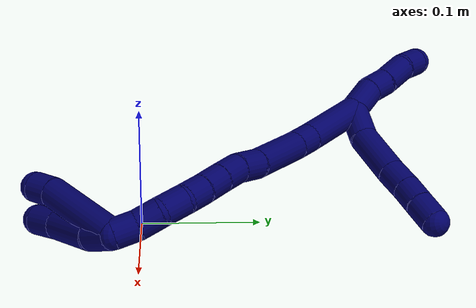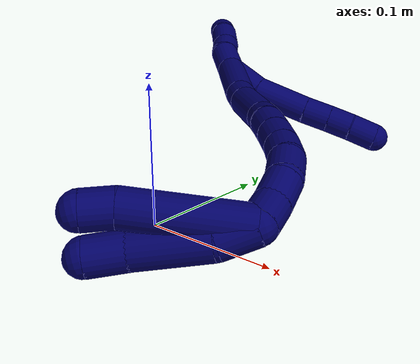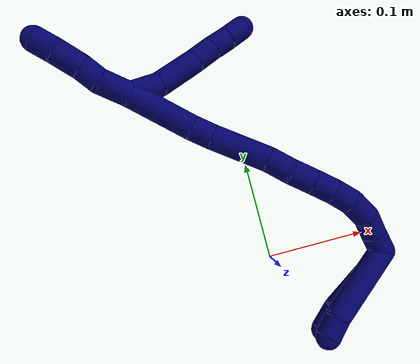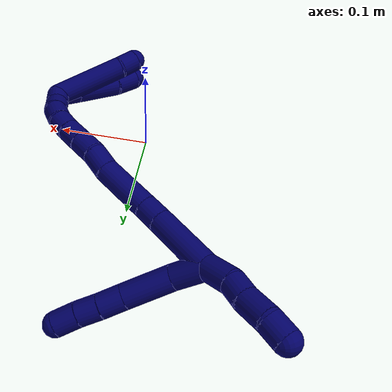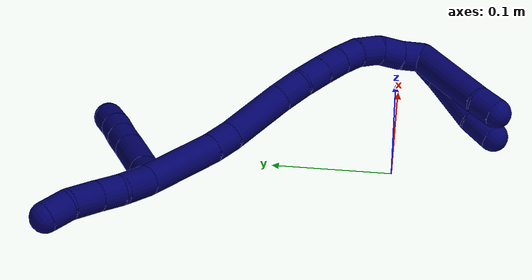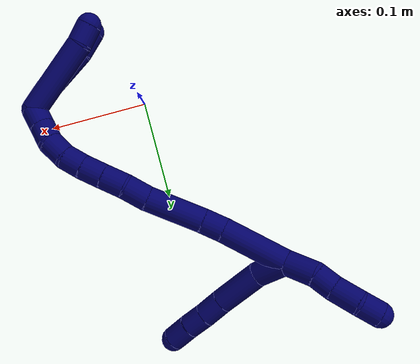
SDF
<sdf version="1.7">
 <world name="default">
  <model name="7">
   <static>0</static>
   <link name="7">
    <collision name="collision-cylinder-e_1_2_8">
     <pose>0.013677 0.000222 0.009453 -0.023457 0.965903 -0.0123</pose>
     <geometry><cylinder><radius>0.0125</radius><length>0.033254</length></cylinder></geometry>
     <surface>
      <friction><ode><mu>1.16</mu><mu2>1.16</mu2><slip1>0</slip1><slip2>0</slip2></ode></friction>
      <contact><ode><kp>1e+06</kp><kd>1</kd><max_vel>0</max_vel><min_depth>0.001</min_depth></ode></contact>
     </surface>
    </collision>
    <visual name="visual-cylinder-e_1_2_8">
     <pose>0.013677 0.000222 0.009453 -0.023457 0.965903 -0.0123</pose>
     <geometry><cylinder><radius>0.0125</radius><length>0.033254</length></cylinder></geometry>
     <material><ambient>0.003922 0 0.403922 1</ambient></material>
    </visual>
    <collision name="collision-cylinder-e_2_8_9">
     <pose>0.04292 0.001849 0.03717 -0.07678 0.704368 -0.028229</pose>
     <geometry><cylinder><radius>0.0125</radius><length>0.048079</length></cylinder></geometry>
     <surface>
      <friction><ode><mu>1.16</mu><mu2>1.16</mu2><slip1>0</slip1><slip2>0</slip2></ode></friction>
      <contact><ode><kp>1e+06</kp><kd>1</kd><max_vel>0</max_vel><min_depth>0.001</min_depth></ode></contact>
     </surface>
    </collision>
    <visual name="visual-cylinder-e_2_8_9">
     <pose>0.04292 0.001849 0.03717 -0.07678 0.704368 -0.028229</pose>
     <geometry><cylinder><radius>0.0125</radius><length>0.048079</length></cylinder></geometry>
     <material><ambient>0.003922 0 0.403922 1</ambient></material>
    </visual>
    <collision name="collision-cylinder-e_3_9_10">
     <pose>0.065653 0.004009 0.064823 -0.080313 0.650392 -0.027092</pose>
     <geometry><cylinder><radius>0.0125</radius><length>0.023671</length></cylinder></geometry>
     <surface>
      <friction><ode><mu>1.16</mu><mu2>1.16</mu2><slip1>0</slip1><slip2>0</slip2></ode></friction>
      <contact><ode><kp>1e+06</kp><kd>1</kd><max_vel>0</max_vel><min_depth>0.001</min_depth></ode></contact>
     </surface>
    </collision>
    <visual name="visual-cylinder-e_3_9_10">
     <pose>0.065653 0.004009 0.064823 -0.080313 0.650392 -0.027092</pose>
     <geometry><cylinder><radius>0.0125</radius><length>0.023671</length></cylinder></geometry>
     <material><ambient>0.003922 0 0.403922 1</ambient></material>
    </visual>
    <collision name="collision-cylinder-e_4_10_11">
     <pose>0.079676 0.005027 0.082528 -0.031482 0.689262 -0.011301</pose>
     <geometry><cylinder><radius>0.0125</radius><length>0.021563</length></cylinder></geometry>
     <surface>
      <friction><ode><mu>1.16</mu><mu2>1.16</mu2><slip1>0</slip1><slip2>0</slip2></ode></friction>
      <contact><ode><kp>1e+06</kp><kd>1</kd><max_vel>0</max_vel><min_depth>0.001</min_depth></ode></contact>
     </surface>
    </collision>
    <visual name="visual-cylinder-e_4_10_11">
     <pose>0.079676 0.005027 0.082528 -0.031482 0.689262 -0.011301</pose>
     <geometry><cylinder><radius>0.0125</radius><length>0.021563</length></cylinder></geometry>
     <material><ambient>0.003922 0 0.403922 1</ambient></material>
    </visual>
    <collision name="collision-cylinder-e_5_11_6">
     <pose>0.094062 0.006449 0.099747 -0.129542 0.69785 -0.047186</pose>
     <geometry><cylinder><radius>0.0125</radius><length>0.023433</length></cylinder></geometry>
     <surface>
      <friction><ode><mu>1.16</mu><mu2>1.16</mu2><slip1>0</slip1><slip2>0</slip2></ode></friction>
      <contact><ode><kp>1e+06</kp><kd>1</kd><max_vel>0</max_vel><min_depth>0.001</min_depth></ode></contact>
     </surface>
    </collision>
    <visual name="visual-cylinder-e_5_11_6">
     <pose>0.094062 0.006449 0.099747 -0.129542 0.69785 -0.047186</pose>
     <geometry><cylinder><radius>0.0125</radius><length>0.023433</length></cylinder></geometry>
     <material><ambient>0.003922 0 0.403922 1</ambient></material>
    </visual>
    <collision name="collision-cylinder-e_1_2_12">
     <pose>-0.012835 0.008346 -0.000807 -1.6672 -0.992104 1.07502</pose>
     <geometry><cylinder><radius>0.0125</radius><length>0.030662</length></cylinder></geometry>
     <surface>
      <friction><ode><mu>1.16</mu><mu2>1.16</mu2><slip1>0</slip1><slip2>0</slip2></ode></friction>
      <contact><ode><kp>1e+06</kp><kd>1</kd><max_vel>0</max_vel><min_depth>0.001</min_depth></ode></contact>
     </surface>
    </collision>
    <visual name="visual-cylinder-e_1_2_12">
     <pose>-0.012835 0.008346 -0.000807 -1.6672 -0.992104 1.07502</pose>
     <geometry><cylinder><radius>0.0125</radius><length>0.030662</length></cylinder></geometry>
     <material><ambient>0.003922 0 0.403922 1</ambient></material>
    </visual>
    <collision name="collision-cylinder-e_2_12_13">
     <pose>-0.032716 0.024071 3.3e-05 -1.35115 -0.750181 0.611275</pose>
     <geometry><cylinder><radius>0.0125</radius><length>0.02067</length></cylinder></geometry>
     <surface>
      <friction><ode><mu>1.16</mu><mu2>1.16</mu2><slip1>0</slip1><slip2>0</slip2></ode></friction>
      <contact><ode><kp>1e+06</kp><kd>1</kd><max_vel>0</max_vel><min_depth>0.001</min_depth></ode></contact>
     </surface>
    </collision>
    <visual name="visual-cylinder-e_2_12_13">
     <pose>-0.032716 0.024071 3.3e-05 -1.35115 -0.750181 0.611275</pose>
     <geometry><cylinder><radius>0.0125</radius><length>0.02067</length></cylinder></geometry>
     <material><ambient>0.003922 0 0.403922 1</ambient></material>
    </visual>
    <collision name="collision-cylinder-e_3_13_14">
     <pose>-0.05036 0.040208 0.002539 -1.47305 -0.877829 0.804883</pose>
     <geometry><cylinder><radius>0.0125</radius><length>0.027551</length></cylinder></geometry>
     <surface>
      <friction><ode><mu>1.16</mu><mu2>1.16</mu2><slip1>0</slip1><slip2>0</slip2></ode></friction>
      <contact><ode><kp>1e+06</kp><kd>1</kd><max_vel>0</max_vel><min_depth>0.001</min_depth></ode></contact>
     </surface>
    </collision>
    <visual name="visual-cylinder-e_3_13_14">
     <pose>-0.05036 0.040208 0.002539 -1.47305 -0.877829 0.804883</pose>
     <geometry><cylinder><radius>0.0125</radius><length>0.027551</length></cylinder></geometry>
     <material><ambient>0.003922 0 0.403922 1</ambient></material>
    </visual>
    <collision name="collision-cylinder-e_4_14_5">
     <pose>-0.067077 0.057569 0.003185 -1.59552 -0.618086 0.63256</pose>
     <geometry><cylinder><radius>0.0125</radius><length>0.021117</length></cylinder></geometry>
     <surface>
      <friction><ode><mu>1.16</mu><mu2>1.16</mu2><slip1>0</slip1><slip2>0</slip2></ode></friction>
      <contact><ode><kp>1e+06</kp><kd>1</kd><max_vel>0</max_vel><min_depth>0.001</min_depth></ode></contact>
     </surface>
    </collision>
    <visual name="visual-cylinder-e_4_14_5">
     <pose>-0.067077 0.057569 0.003185 -1.59552 -0.618086 0.63256</pose>
     <geometry><cylinder><radius>0.0125</radius><length>0.021117</length></cylinder></geometry>
     <material><ambient>0.003922 0 0.403922 1</ambient></material>
    </visual>
    <collision name="collision-cylinder-e_1_2_15">
     <pose>0.022178 -0.02501 0.000885 1.53544 0.72515 0.702006</pose>
     <geometry><cylinder><radius>0.0125</radius><length>0.066877</length></cylinder></geometry>
     <surface>
      <friction><ode><mu>1.16</mu><mu2>1.16</mu2><slip1>0</slip1><slip2>0</slip2></ode></friction>
      <contact><ode><kp>1e+06</kp><kd>1</kd><max_vel>0</max_vel><min_depth>0.001</min_depth></ode></contact>
     </surface>
    </collision>
    <visual name="visual-cylinder-e_1_2_15">
     <pose>0.022178 -0.02501 0.000885 1.53544 0.72515 0.702006</pose>
     <geometry><cylinder><radius>0.0125</radius><length>0.066877</length></cylinder></geometry>
     <material><ambient>0.003922 0 0.403922 1</ambient></material>
    </visual>
    <collision name="collision-cylinder-e_2_15_16">
     <pose>0.051163 -0.058696 0.002872 1.44439 0.661387 0.587377</pose>
     <geometry><cylinder><radius>0.0125</radius><length>0.022166</length></cylinder></geometry>
     <surface>
      <friction><ode><mu>1.16</mu><mu2>1.16</mu2><slip1>0</slip1><slip2>0</slip2></ode></friction>
      <contact><ode><kp>1e+06</kp><kd>1</kd><max_vel>0</max_vel><min_depth>0.001</min_depth></ode></contact>
     </surface>
    </collision>
    <visual name="visual-cylinder-e_2_15_16">
     <pose>0.051163 -0.058696 0.002872 1.44439 0.661387 0.587377</pose>
     <geometry><cylinder><radius>0.0125</radius><length>0.022166</length></cylinder></geometry>
     <material><ambient>0.003922 0 0.403922 1</ambient></material>
    </visual>
    <collision name="collision-cylinder-e_3_16_17">
     <pose>0.074269 -0.090916 0.008511 1.38042 0.596999 0.49759</pose>
     <geometry><cylinder><radius>0.0125</radius><length>0.057983</length></cylinder></geometry>
     <surface>
      <friction><ode><mu>1.16</mu><mu2>1.16</mu2><slip1>0</slip1><slip2>0</slip2></ode></friction>
      <contact><ode><kp>1e+06</kp><kd>1</kd><max_vel>0</max_vel><min_depth>0.001</min_depth></ode></contact>
     </surface>
    </collision>
    <visual name="visual-cylinder-e_3_16_17">
     <pose>0.074269 -0.090916 0.008511 1.38042 0.596999 0.49759</pose>
     <geometry><cylinder><radius>0.0125</radius><length>0.057983</length></cylinder></geometry>
     <material><ambient>0.003922 0 0.403922 1</ambient></material>
    </visual>
    <collision name="collision-cylinder-e_4_17_18">
     <pose>0.096146 -0.125198 0.013761 1.50458 0.478261 0.448649</pose>
     <geometry><cylinder><radius>0.0125</radius><length>0.024245</length></cylinder></geometry>
     <surface>
      <friction><ode><mu>1.16</mu><mu2>1.16</mu2><slip1>0</slip1><slip2>0</slip2></ode></friction>
      <contact><ode><kp>1e+06</kp><kd>1</kd><max_vel>0</max_vel><min_depth>0.001</min_depth></ode></contact>
     </surface>
    </collision>
    <visual name="visual-cylinder-e_4_17_18">
     <pose>0.096146 -0.125198 0.013761 1.50458 0.478261 0.448649</pose>
     <geometry><cylinder><radius>0.0125</radius><length>0.024245</length></cylinder></geometry>
     <material><ambient>0.003922 0 0.403922 1</ambient></material>
    </visual>
    <collision name="collision-cylinder-e_5_18_19">
     <pose>0.109123 -0.144834 0.015513 1.45439 0.690288 0.619302</pose>
     <geometry><cylinder><radius>0.0125</radius><length>0.023235</length></cylinder></geometry>
     <surface>
      <friction><ode><mu>1.16</mu><mu2>1.16</mu2><slip1>0</slip1><slip2>0</slip2></ode></friction>
      <contact><ode><kp>1e+06</kp><kd>1</kd><max_vel>0</max_vel><min_depth>0.001</min_depth></ode></contact>
     </surface>
    </collision>
    <visual name="visual-cylinder-e_5_18_19">
     <pose>0.109123 -0.144834 0.015513 1.45439 0.690288 0.619302</pose>
     <geometry><cylinder><radius>0.0125</radius><length>0.023235</length></cylinder></geometry>
     <material><ambient>0.003922 0 0.403922 1</ambient></material>
    </visual>
    <collision name="collision-cylinder-e_6_19_20">
     <pose>0.123746 -0.162023 0.017325 1.47798 0.714695 0.6559</pose>
     <geometry><cylinder><radius>0.0125</radius><length>0.022051</length></cylinder></geometry>
     <surface>
      <friction><ode><mu>1.16</mu><mu2>1.16</mu2><slip1>0</slip1><slip2>0</slip2></ode></friction>
      <contact><ode><kp>1e+06</kp><kd>1</kd><max_vel>0</max_vel><min_depth>0.001</min_depth></ode></contact>
     </surface>
    </collision>
    <visual name="visual-cylinder-e_6_19_20">
     <pose>0.123746 -0.162023 0.017325 1.47798 0.714695 0.6559</pose>
     <geometry><cylinder><radius>0.0125</radius><length>0.022051</length></cylinder></geometry>
     <material><ambient>0.003922 0 0.403922 1</ambient></material>
    </visual>
    <collision name="collision-cylinder-e_7_20_21">
     <pose>0.137584 -0.178045 0.018005 1.58269 0.707573 0.715341</pose>
     <geometry><cylinder><radius>0.0125</radius><length>0.020346</length></cylinder></geometry>
     <surface>
      <friction><ode><mu>1.16</mu><mu2>1.16</mu2><slip1>0</slip1><slip2>0</slip2></ode></friction>
      <contact><ode><kp>1e+06</kp><kd>1</kd><max_vel>0</max_vel><min_depth>0.001</min_depth></ode></contact>
     </surface>
    </collision>
    <visual name="visual-cylinder-e_7_20_21">
     <pose>0.137584 -0.178045 0.018005 1.58269 0.707573 0.715341</pose>
     <geometry><cylinder><radius>0.0125</radius><length>0.020346</length></cylinder></geometry>
     <material><ambient>0.003922 0 0.403922 1</ambient></material>
    </visual>
    <collision name="collision-cylinder-e_8_21_22">
     <pose>0.151652 -0.193325 0.01503 1.93563 0.745091 1.03249</pose>
     <geometry><cylinder><radius>0.0125</radius><length>0.02199</length></cylinder></geometry>
     <surface>
      <friction><ode><mu>1.16</mu><mu2>1.16</mu2><slip1>0</slip1><slip2>0</slip2></ode></friction>
      <contact><ode><kp>1e+06</kp><kd>1</kd><max_vel>0</max_vel><min_depth>0.001</min_depth></ode></contact>
     </surface>
    </collision>
    <visual name="visual-cylinder-e_8_21_22">
     <pose>0.151652 -0.193325 0.01503 1.93563 0.745091 1.03249</pose>
     <geometry><cylinder><radius>0.0125</radius><length>0.02199</length></cylinder></geometry>
     <material><ambient>0.003922 0 0.403922 1</ambient></material>
    </visual>
    <collision name="collision-cylinder-e_9_22_23">
     <pose>0.166155 -0.206091 0.00649 2.39664 0.741536 1.56574</pose>
     <geometry><cylinder><radius>0.0125</radius><length>0.02087</length></cylinder></geometry>
     <surface>
      <friction><ode><mu>1.16</mu><mu2>1.16</mu2><slip1>0</slip1><slip2>0</slip2></ode></friction>
      <contact><ode><kp>1e+06</kp><kd>1</kd><max_vel>0</max_vel><min_depth>0.001</min_depth></ode></contact>
     </surface>
    </collision>
    <visual name="visual-cylinder-e_9_22_23">
     <pose>0.166155 -0.206091 0.00649 2.39664 0.741536 1.56574</pose>
     <geometry><cylinder><radius>0.0125</radius><length>0.02087</length></cylinder></geometry>
     <material><ambient>0.003922 0 0.403922 1</ambient></material>
    </visual>
    <collision name="collision-cylinder-e_10_23_1">
     <pose>0.178885 -0.217692 -0.004584 2.27434 0.59625 1.17183</pose>
     <geometry><cylinder><radius>0.0125</radius><length>0.020238</length></cylinder></geometry>
     <surface>
      <friction><ode><mu>1.16</mu><mu2>1.16</mu2><slip1>0</slip1><slip2>0</slip2></ode></friction>
      <contact><ode><kp>1e+06</kp><kd>1</kd><max_vel>0</max_vel><min_depth>0.001</min_depth></ode></contact>
     </surface>
    </collision>
    <visual name="visual-cylinder-e_10_23_1">
     <pose>0.178885 -0.217692 -0.004584 2.27434 0.59625 1.17183</pose>
     <geometry><cylinder><radius>0.0125</radius><length>0.020238</length></cylinder></geometry>
     <material><ambient>0.003922 0 0.403922 1</ambient></material>
    </visual>
    <collision name="collision-cylinder-e_1_1_24">
     <pose>0.169217 -0.229481 -0.046377 2.99411 -0.3954 -2.43497</pose>
     <geometry><cylinder><radius>0.0125</radius><length>0.079701</length></cylinder></geometry>
     <surface>
      <friction><ode><mu>1.16</mu><mu2>1.16</mu2><slip1>0</slip1><slip2>0</slip2></ode></friction>
      <contact><ode><kp>1e+06</kp><kd>1</kd><max_vel>0</max_vel><min_depth>0.001</min_depth></ode></contact>
     </surface>
    </collision>
    <visual name="visual-cylinder-e_1_1_24">
     <pose>0.169217 -0.229481 -0.046377 2.99411 -0.3954 -2.43497</pose>
     <geometry><cylinder><radius>0.0125</radius><length>0.079701</length></cylinder></geometry>
     <material><ambient>0.003922 0 0.403922 1</ambient></material>
    </visual>
    <collision name="collision-cylinder-e_2_24_4">
     <pose>0.152145 -0.236963 -0.092538 2.93233 -0.170541 -1.36639</pose>
     <geometry><cylinder><radius>0.0125</radius><length>0.020299</length></cylinder></geometry>
     <surface>
      <friction><ode><mu>1.16</mu><mu2>1.16</mu2><slip1>0</slip1><slip2>0</slip2></ode></friction>
      <contact><ode><kp>1e+06</kp><kd>1</kd><max_vel>0</max_vel><min_depth>0.001</min_depth></ode></contact>
     </surface>
    </collision>
    <visual name="visual-cylinder-e_2_24_4">
     <pose>0.152145 -0.236963 -0.092538 2.93233 -0.170541 -1.36639</pose>
     <geometry><cylinder><radius>0.0125</radius><length>0.020299</length></cylinder></geometry>
     <material><ambient>0.003922 0 0.403922 1</ambient></material>
    </visual>
    <collision name="collision-cylinder-e_1_1_25">
     <pose>0.185246 -0.224042 -0.022638 -3.13886 0.053698 -3.03992</pose>
     <geometry><cylinder><radius>0.0125</radius><length>0.025313</length></cylinder></geometry>
     <surface>
      <friction><ode><mu>1.16</mu><mu2>1.16</mu2><slip1>0</slip1><slip2>0</slip2></ode></friction>
      <contact><ode><kp>1e+06</kp><kd>1</kd><max_vel>0</max_vel><min_depth>0.001</min_depth></ode></contact>
     </surface>
    </collision>
    <visual name="visual-cylinder-e_1_1_25">
     <pose>0.185246 -0.224042 -0.022638 -3.13886 0.053698 -3.03992</pose>
     <geometry><cylinder><radius>0.0125</radius><length>0.025313</length></cylinder></geometry>
     <material><ambient>0.003922 0 0.403922 1</ambient></material>
    </visual>
    <collision name="collision-cylinder-e_2_25_26">
     <pose>0.181229 -0.222702 -0.059583 -3.08791 -0.190592 2.59396</pose>
     <geometry><cylinder><radius>0.0125</radius><length>0.049581</length></cylinder></geometry>
     <surface>
      <friction><ode><mu>1.16</mu><mu2>1.16</mu2><slip1>0</slip1><slip2>0</slip2></ode></friction>
      <contact><ode><kp>1e+06</kp><kd>1</kd><max_vel>0</max_vel><min_depth>0.001</min_depth></ode></contact>
     </surface>
    </collision>
    <visual name="visual-cylinder-e_2_25_26">
     <pose>0.181229 -0.222702 -0.059583 -3.08791 -0.190592 2.59396</pose>
     <geometry><cylinder><radius>0.0125</radius><length>0.049581</length></cylinder></geometry>
     <material><ambient>0.003922 0 0.403922 1</ambient></material>
    </visual>
    <collision name="collision-cylinder-e_3_26_3">
     <pose>0.174947 -0.222728 -0.096271 3.03441 -0.126691 -1.73759</pose>
     <geometry><cylinder><radius>0.0125</radius><length>0.025106</length></cylinder></geometry>
     <surface>
      <friction><ode><mu>1.16</mu><mu2>1.16</mu2><slip1>0</slip1><slip2>0</slip2></ode></friction>
      <contact><ode><kp>1e+06</kp><kd>1</kd><max_vel>0</max_vel><min_depth>0.001</min_depth></ode></contact>
     </surface>
    </collision>
    <visual name="visual-cylinder-e_3_26_3">
     <pose>0.174947 -0.222728 -0.096271 3.03441 -0.126691 -1.73759</pose>
     <geometry><cylinder><radius>0.0125</radius><length>0.025106</length></cylinder></geometry>
     <material><ambient>0.003922 0 0.403922 1</ambient></material>
    </visual>
    <collision name="collision-sphere-3">
     <pose>0.17336 -0.22406 -0.108652 0 -0 0</pose>
     <geometry><sphere><radius>0.0125</radius></sphere></geometry>
     <surface>
      <friction><ode><mu>1.16</mu><mu2>1.16</mu2><slip1>0</slip1><slip2>0</slip2></ode></friction>
      <contact><ode><kp>1e+06</kp><kd>1</kd><max_vel>0</max_vel><min_depth>0.001</min_depth></ode></contact>
     </surface>
    </collision>
    <visual name="visual-sphere-3">
     <pose>0.17336 -0.22406 -0.108652 0 -0 0</pose>
     <geometry><sphere><radius>0.0125</radius></sphere></geometry>
     <material><ambient>0.003922 0 0.403922 1</ambient></material>
    </visual>
    <collision name="collision-sphere-26">
     <pose>0.176533 -0.221396 -0.08389 0 -0 0</pose>
     <geometry><sphere><radius>0.0125</radius></sphere></geometry>
     <surface>
      <friction><ode><mu>1.16</mu><mu2>1.16</mu2><slip1>0</slip1><slip2>0</slip2></ode></friction>
      <contact><ode><kp>1e+06</kp><kd>1</kd><max_vel>0</max_vel><min_depth>0.001</min_depth></ode></contact>
     </surface>
    </collision>
    <visual name="visual-sphere-26">
     <pose>0.176533 -0.221396 -0.08389 0 -0 0</pose>
     <geometry><sphere><radius>0.0125</radius></sphere></geometry>
     <material><ambient>0.003922 0 0.403922 1</ambient></material>
    </visual>
    <collision name="collision-sphere-25">
     <pose>0.185925 -0.224008 -0.035277 0 -0 0</pose>
     <geometry><sphere><radius>0.0125</radius></sphere></geometry>
     <surface>
      <friction><ode><mu>1.16</mu><mu2>1.16</mu2><slip1>0</slip1><slip2>0</slip2></ode></friction>
      <contact><ode><kp>1e+06</kp><kd>1</kd><max_vel>0</max_vel><min_depth>0.001</min_depth></ode></contact>
     </surface>
    </collision>
    <visual name="visual-sphere-25">
     <pose>0.185925 -0.224008 -0.035277 0 -0 0</pose>
     <geometry><sphere><radius>0.0125</radius></sphere></geometry>
     <material><ambient>0.003922 0 0.403922 1</ambient></material>
    </visual>
    <collision name="collision-sphere-4">
     <pose>0.150423 -0.239041 -0.102321 0 -0 0</pose>
     <geometry><sphere><radius>0.0125</radius></sphere></geometry>
     <surface>
      <friction><ode><mu>1.16</mu><mu2>1.16</mu2><slip1>0</slip1><slip2>0</slip2></ode></friction>
      <contact><ode><kp>1e+06</kp><kd>1</kd><max_vel>0</max_vel><min_depth>0.001</min_depth></ode></contact>
     </surface>
    </collision>
    <visual name="visual-sphere-4">
     <pose>0.150423 -0.239041 -0.102321 0 -0 0</pose>
     <geometry><sphere><radius>0.0125</radius></sphere></geometry>
     <material><ambient>0.003922 0 0.403922 1</ambient></material>
    </visual>
    <collision name="collision-sphere-24">
     <pose>0.153868 -0.234885 -0.082754 0 -0 0</pose>
     <geometry><sphere><radius>0.0125</radius></sphere></geometry>
     <surface>
      <friction><ode><mu>1.16</mu><mu2>1.16</mu2><slip1>0</slip1><slip2>0</slip2></ode></friction>
      <contact><ode><kp>1e+06</kp><kd>1</kd><max_vel>0</max_vel><min_depth>0.001</min_depth></ode></contact>
     </surface>
    </collision>
    <visual name="visual-sphere-24">
     <pose>0.153868 -0.234885 -0.082754 0 -0 0</pose>
     <geometry><sphere><radius>0.0125</radius></sphere></geometry>
     <material><ambient>0.003922 0 0.403922 1</ambient></material>
    </visual>
    <collision name="collision-sphere-1">
     <pose>0.184567 -0.224077 -0.01 0 -0 0</pose>
     <geometry><sphere><radius>0.0125</radius></sphere></geometry>
     <surface>
      <friction><ode><mu>1.16</mu><mu2>1.16</mu2><slip1>0</slip1><slip2>0</slip2></ode></friction>
      <contact><ode><kp>1e+06</kp><kd>1</kd><max_vel>0</max_vel><min_depth>0.001</min_depth></ode></contact>
     </surface>
    </collision>
    <visual name="visual-sphere-1">
     <pose>0.184567 -0.224077 -0.01 0 -0 0</pose>
     <geometry><sphere><radius>0.0125</radius></sphere></geometry>
     <material><ambient>0.003922 0 0.403922 1</ambient></material>
    </visual>
    <collision name="collision-sphere-23">
     <pose>0.173202 -0.211308 0.000833 0 -0 0</pose>
     <geometry><sphere><radius>0.0125</radius></sphere></geometry>
     <surface>
      <friction><ode><mu>1.16</mu><mu2>1.16</mu2><slip1>0</slip1><slip2>0</slip2></ode></friction>
      <contact><ode><kp>1e+06</kp><kd>1</kd><max_vel>0</max_vel><min_depth>0.001</min_depth></ode></contact>
     </surface>
    </collision>
    <visual name="visual-sphere-23">
     <pose>0.173202 -0.211308 0.000833 0 -0 0</pose>
     <geometry><sphere><radius>0.0125</radius></sphere></geometry>
     <material><ambient>0.003922 0 0.403922 1</ambient></material>
    </visual>
    <collision name="collision-sphere-22">
     <pose>0.159107 -0.200874 0.012146 0 -0 0</pose>
     <geometry><sphere><radius>0.0125</radius></sphere></geometry>
     <surface>
      <friction><ode><mu>1.16</mu><mu2>1.16</mu2><slip1>0</slip1><slip2>0</slip2></ode></friction>
      <contact><ode><kp>1e+06</kp><kd>1</kd><max_vel>0</max_vel><min_depth>0.001</min_depth></ode></contact>
     </surface>
    </collision>
    <visual name="visual-sphere-22">
     <pose>0.159107 -0.200874 0.012146 0 -0 0</pose>
     <geometry><sphere><radius>0.0125</radius></sphere></geometry>
     <material><ambient>0.003922 0 0.403922 1</ambient></material>
    </visual>
    <collision name="collision-sphere-21">
     <pose>0.144197 -0.185775 0.017913 0 -0 0</pose>
     <geometry><sphere><radius>0.0125</radius></sphere></geometry>
     <surface>
      <friction><ode><mu>1.16</mu><mu2>1.16</mu2><slip1>0</slip1><slip2>0</slip2></ode></friction>
      <contact><ode><kp>1e+06</kp><kd>1</kd><max_vel>0</max_vel><min_depth>0.001</min_depth></ode></contact>
     </surface>
    </collision>
    <visual name="visual-sphere-21">
     <pose>0.144197 -0.185775 0.017913 0 -0 0</pose>
     <geometry><sphere><radius>0.0125</radius></sphere></geometry>
     <material><ambient>0.003922 0 0.403922 1</ambient></material>
    </visual>
    <collision name="collision-sphere-6">
     <pose>0.101591 0.007608 0.108649 0 -0 0</pose>
     <geometry><sphere><radius>0.0125</radius></sphere></geometry>
     <surface>
      <friction><ode><mu>1.16</mu><mu2>1.16</mu2><slip1>0</slip1><slip2>0</slip2></ode></friction>
      <contact><ode><kp>1e+06</kp><kd>1</kd><max_vel>0</max_vel><min_depth>0.001</min_depth></ode></contact>
     </surface>
    </collision>
    <visual name="visual-sphere-6">
     <pose>0.101591 0.007608 0.108649 0 -0 0</pose>
     <geometry><sphere><radius>0.0125</radius></sphere></geometry>
     <material><ambient>0.003922 0 0.403922 1</ambient></material>
    </visual>
    <collision name="collision-sphere-11">
     <pose>0.086533 0.005289 0.090845 0 -0 0</pose>
     <geometry><sphere><radius>0.0125</radius></sphere></geometry>
     <surface>
      <friction><ode><mu>1.16</mu><mu2>1.16</mu2><slip1>0</slip1><slip2>0</slip2></ode></friction>
      <contact><ode><kp>1e+06</kp><kd>1</kd><max_vel>0</max_vel><min_depth>0.001</min_depth></ode></contact>
     </surface>
    </collision>
    <visual name="visual-sphere-11">
     <pose>0.086533 0.005289 0.090845 0 -0 0</pose>
     <geometry><sphere><radius>0.0125</radius></sphere></geometry>
     <material><ambient>0.003922 0 0.403922 1</ambient></material>
    </visual>
    <collision name="collision-sphere-10">
     <pose>0.07282 0.004765 0.074212 0 -0 0</pose>
     <geometry><sphere><radius>0.0125</radius></sphere></geometry>
     <surface>
      <friction><ode><mu>1.16</mu><mu2>1.16</mu2><slip1>0</slip1><slip2>0</slip2></ode></friction>
      <contact><ode><kp>1e+06</kp><kd>1</kd><max_vel>0</max_vel><min_depth>0.001</min_depth></ode></contact>
     </surface>
    </collision>
    <visual name="visual-sphere-10">
     <pose>0.07282 0.004765 0.074212 0 -0 0</pose>
     <geometry><sphere><radius>0.0125</radius></sphere></geometry>
     <material><ambient>0.003922 0 0.403922 1</ambient></material>
    </visual>
    <collision name="collision-sphere-9">
     <pose>0.058487 0.003254 0.055435 0 -0 0</pose>
     <geometry><sphere><radius>0.0125</radius></sphere></geometry>
     <surface>
      <friction><ode><mu>1.16</mu><mu2>1.16</mu2><slip1>0</slip1><slip2>0</slip2></ode></friction>
      <contact><ode><kp>1e+06</kp><kd>1</kd><max_vel>0</max_vel><min_depth>0.001</min_depth></ode></contact>
     </surface>
    </collision>
    <visual name="visual-sphere-9">
     <pose>0.058487 0.003254 0.055435 0 -0 0</pose>
     <geometry><sphere><radius>0.0125</radius></sphere></geometry>
     <material><ambient>0.003922 0 0.403922 1</ambient></material>
    </visual>
    <collision name="collision-sphere-2">
     <geometry><sphere><radius>0.0125</radius></sphere></geometry>
     <surface>
      <friction><ode><mu>1.16</mu><mu2>1.16</mu2><slip1>0</slip1><slip2>0</slip2></ode></friction>
      <contact><ode><kp>1e+06</kp><kd>1</kd><max_vel>0</max_vel><min_depth>0.001</min_depth></ode></contact>
     </surface>
    </collision>
    <visual name="visual-sphere-2">
     <geometry><sphere><radius>0.0125</radius></sphere></geometry>
     <material><ambient>0.003922 0 0.403922 1</ambient></material>
    </visual>
    <collision name="collision-sphere-19">
     <pose>0.11652 -0.153731 0.016553 0 -0 0</pose>
     <geometry><sphere><radius>0.0125</radius></sphere></geometry>
     <surface>
      <friction><ode><mu>1.16</mu><mu2>1.16</mu2><slip1>0</slip1><slip2>0</slip2></ode></friction>
      <contact><ode><kp>1e+06</kp><kd>1</kd><max_vel>0</max_vel><min_depth>0.001</min_depth></ode></contact>
     </surface>
    </collision>
    <visual name="visual-sphere-19">
     <pose>0.11652 -0.153731 0.016553 0 -0 0</pose>
     <geometry><sphere><radius>0.0125</radius></sphere></geometry>
     <material><ambient>0.003922 0 0.403922 1</ambient></material>
    </visual>
    <collision name="collision-sphere-8">
     <pose>0.027353 0.000444 0.018905 0 -0 0</pose>
     <geometry><sphere><radius>0.0125</radius></sphere></geometry>
     <surface>
      <friction><ode><mu>1.16</mu><mu2>1.16</mu2><slip1>0</slip1><slip2>0</slip2></ode></friction>
      <contact><ode><kp>1e+06</kp><kd>1</kd><max_vel>0</max_vel><min_depth>0.001</min_depth></ode></contact>
     </surface>
    </collision>
    <visual name="visual-sphere-8">
     <pose>0.027353 0.000444 0.018905 0 -0 0</pose>
     <geometry><sphere><radius>0.0125</radius></sphere></geometry>
     <material><ambient>0.003922 0 0.403922 1</ambient></material>
    </visual>
    <collision name="collision-sphere-12">
     <pose>-0.02567 0.016692 -0.001614 0 -0 0</pose>
     <geometry><sphere><radius>0.0125</radius></sphere></geometry>
     <surface>
      <friction><ode><mu>1.16</mu><mu2>1.16</mu2><slip1>0</slip1><slip2>0</slip2></ode></friction>
      <contact><ode><kp>1e+06</kp><kd>1</kd><max_vel>0</max_vel><min_depth>0.001</min_depth></ode></contact>
     </surface>
    </collision>
    <visual name="visual-sphere-12">
     <pose>-0.02567 0.016692 -0.001614 0 -0 0</pose>
     <geometry><sphere><radius>0.0125</radius></sphere></geometry>
     <material><ambient>0.003922 0 0.403922 1</ambient></material>
    </visual>
    <collision name="collision-sphere-13">
     <pose>-0.039762 0.03145 0.00168 0 -0 0</pose>
     <geometry><sphere><radius>0.0125</radius></sphere></geometry>
     <surface>
      <friction><ode><mu>1.16</mu><mu2>1.16</mu2><slip1>0</slip1><slip2>0</slip2></ode></friction>
      <contact><ode><kp>1e+06</kp><kd>1</kd><max_vel>0</max_vel><min_depth>0.001</min_depth></ode></contact>
     </surface>
    </collision>
    <visual name="visual-sphere-13">
     <pose>-0.039762 0.03145 0.00168 0 -0 0</pose>
     <geometry><sphere><radius>0.0125</radius></sphere></geometry>
     <material><ambient>0.003922 0 0.403922 1</ambient></material>
    </visual>
    <collision name="collision-sphere-14">
     <pose>-0.060958 0.048966 0.003398 0 -0 0</pose>
     <geometry><sphere><radius>0.0125</radius></sphere></geometry>
     <surface>
      <friction><ode><mu>1.16</mu><mu2>1.16</mu2><slip1>0</slip1><slip2>0</slip2></ode></friction>
      <contact><ode><kp>1e+06</kp><kd>1</kd><max_vel>0</max_vel><min_depth>0.001</min_depth></ode></contact>
     </surface>
    </collision>
    <visual name="visual-sphere-14">
     <pose>-0.060958 0.048966 0.003398 0 -0 0</pose>
     <geometry><sphere><radius>0.0125</radius></sphere></geometry>
     <material><ambient>0.003922 0 0.403922 1</ambient></material>
    </visual>
    <collision name="collision-sphere-5">
     <pose>-0.073195 0.066171 0.002973 0 -0 0</pose>
     <geometry><sphere><radius>0.0125</radius></sphere></geometry>
     <surface>
      <friction><ode><mu>1.16</mu><mu2>1.16</mu2><slip1>0</slip1><slip2>0</slip2></ode></friction>
      <contact><ode><kp>1e+06</kp><kd>1</kd><max_vel>0</max_vel><min_depth>0.001</min_depth></ode></contact>
     </surface>
    </collision>
    <visual name="visual-sphere-5">
     <pose>-0.073195 0.066171 0.002973 0 -0 0</pose>
     <geometry><sphere><radius>0.0125</radius></sphere></geometry>
     <material><ambient>0.003922 0 0.403922 1</ambient></material>
    </visual>
    <collision name="collision-sphere-15">
     <pose>0.044356 -0.05002 0.001769 0 -0 0</pose>
     <geometry><sphere><radius>0.0125</radius></sphere></geometry>
     <surface>
      <friction><ode><mu>1.16</mu><mu2>1.16</mu2><slip1>0</slip1><slip2>0</slip2></ode></friction>
      <contact><ode><kp>1e+06</kp><kd>1</kd><max_vel>0</max_vel><min_depth>0.001</min_depth></ode></contact>
     </surface>
    </collision>
    <visual name="visual-sphere-15">
     <pose>0.044356 -0.05002 0.001769 0 -0 0</pose>
     <geometry><sphere><radius>0.0125</radius></sphere></geometry>
     <material><ambient>0.003922 0 0.403922 1</ambient></material>
    </visual>
    <collision name="collision-sphere-16">
     <pose>0.057971 -0.067372 0.003974 0 -0 0</pose>
     <geometry><sphere><radius>0.0125</radius></sphere></geometry>
     <surface>
      <friction><ode><mu>1.16</mu><mu2>1.16</mu2><slip1>0</slip1><slip2>0</slip2></ode></friction>
      <contact><ode><kp>1e+06</kp><kd>1</kd><max_vel>0</max_vel><min_depth>0.001</min_depth></ode></contact>
     </surface>
    </collision>
    <visual name="visual-sphere-16">
     <pose>0.057971 -0.067372 0.003974 0 -0 0</pose>
     <geometry><sphere><radius>0.0125</radius></sphere></geometry>
     <material><ambient>0.003922 0 0.403922 1</ambient></material>
    </visual>
    <collision name="collision-sphere-17">
     <pose>0.090567 -0.114459 0.013048 0 -0 0</pose>
     <geometry><sphere><radius>0.0125</radius></sphere></geometry>
     <surface>
      <friction><ode><mu>1.16</mu><mu2>1.16</mu2><slip1>0</slip1><slip2>0</slip2></ode></friction>
      <contact><ode><kp>1e+06</kp><kd>1</kd><max_vel>0</max_vel><min_depth>0.001</min_depth></ode></contact>
     </surface>
    </collision>
    <visual name="visual-sphere-17">
     <pose>0.090567 -0.114459 0.013048 0 -0 0</pose>
     <geometry><sphere><radius>0.0125</radius></sphere></geometry>
     <material><ambient>0.003922 0 0.403922 1</ambient></material>
    </visual>
    <collision name="collision-sphere-18">
     <pose>0.101725 -0.135937 0.014473 0 -0 0</pose>
     <geometry><sphere><radius>0.0125</radius></sphere></geometry>
     <surface>
      <friction><ode><mu>1.16</mu><mu2>1.16</mu2><slip1>0</slip1><slip2>0</slip2></ode></friction>
      <contact><ode><kp>1e+06</kp><kd>1</kd><max_vel>0</max_vel><min_depth>0.001</min_depth></ode></contact>
     </surface>
    </collision>
    <visual name="visual-sphere-18">
     <pose>0.101725 -0.135937 0.014473 0 -0 0</pose>
     <geometry><sphere><radius>0.0125</radius></sphere></geometry>
     <material><ambient>0.003922 0 0.403922 1</ambient></material>
    </visual>
    <collision name="collision-sphere-20">
     <pose>0.130972 -0.170314 0.018097 0 -0 0</pose>
     <geometry><sphere><radius>0.0125</radius></sphere></geometry>
     <surface>
      <friction><ode><mu>1.16</mu><mu2>1.16</mu2><slip1>0</slip1><slip2>0</slip2></ode></friction>
      <contact><ode><kp>1e+06</kp><kd>1</kd><max_vel>0</max_vel><min_depth>0.001</min_depth></ode></contact>
     </surface>
    </collision>
    <visual name="visual-sphere-20">
     <pose>0.130972 -0.170314 0.018097 0 -0 0</pose>
     <geometry><sphere><radius>0.0125</radius></sphere></geometry>
     <material><ambient>0.003922 0 0.403922 1</ambient></material>
    </visual>
    <inertial>
     <pose>0.088672 -0.102235 -0.001628 0 -0 0</pose>
     <mass>0.75</mass>
     <inertia><ixx>3.2e-05</ixx><ixy>0</ixy><ixz>0</ixz><iyy>9.5e-05</iyy><iyz>0</iyz><izz>1.3e-05</izz></inertia>
    </inertial>
   </link>
   <pose>-0.094201 0.188698 0.067434 -1.10533 0.928726 -0.412586</pose>
  </model>
 </world>
</sdf>
